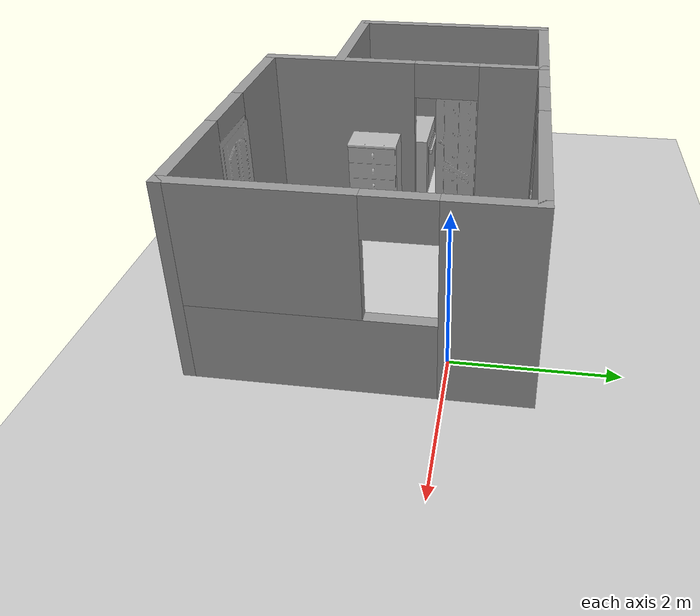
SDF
<sdf version="1.6">
 <world name="default">
  <light name="sun" type="directional">
   <pose>0 0 10 0 -0 0</pose>
   <diffuse>0.8 0.8 0.8 1</diffuse>
   <specular>0.2 0.2 0.2 1</specular>
   <attenuation>
    <range>1000</range>
    <constant>0.9</constant>
    <linear>0.01</linear>
    <quadratic>0.001</quadratic>
   </attenuation>
   <direction>-0.5 0.1 -0.9</direction>
  </light>
  <model name="ground_plane">
   <static>1</static>
   <link name="link">
    <collision name="collision">
     <geometry><plane><normal>0 0 1</normal><size>100 100</size></plane></geometry>
     <surface><friction><ode><mu>100</mu><mu2>50</mu2></ode></friction></surface>
    </collision>
    <visual name="visual">
     <cast_shadows>0</cast_shadows>
     <geometry><plane><normal>0 0 1</normal><size>100 100</size></plane></geometry>
     <material>
      <script><uri>file://media/materials/scripts/gazebo.material</uri><name>Gazebo/Grey</name></script>
     </material>
    </visual>
   </link>
  </model>
  <gravity>0 0 -9.8</gravity>
  <magnetic_field>6e-06 2.3e-05 -4.2e-05</magnetic_field>
  <atmosphere type="adiabatic"/>
  <physics name="default_physics" default="0" type="ode">
   <max_step_size>0.001</max_step_size>
   <real_time_factor>1</real_time_factor>
   <real_time_update_rate>1000</real_time_update_rate>
  </physics>
  <scene><ambient>0.4 0.4 0.4 1</ambient><background>0.7 0.7 0.7 1</background><shadows>1</shadows></scene>
  <audio><device>default</device></audio>
  <spherical_coordinates>
   <surface_model>EARTH_WGS84</surface_model>
   <latitude_deg>0</latitude_deg>
   <longitude_deg>0</longitude_deg>
   <elevation>0</elevation>
   <heading_deg>0</heading_deg>
  </spherical_coordinates>
  <model name="Small_Hospital_Room_0">
   <pose>-2.29599 -0.979467 0 0 -0 0</pose>
   <link name="Wall_11">
    <pose>0.925 1.925 0 0 -0 0</pose>
    <visual name="Wall_11_Visual_0">
     <pose>-1.59335 0 1.25 0 -0 0</pose>
     <geometry><box><size>0.813306 0.15 2.5</size></box></geometry>
     <material>
      <script><uri>file://media/materials/scripts/gazebo.material</uri><name>Gazebo/Grey</name></script>
      <ambient>1 1 1 1</ambient>
     </material>
     <meta><layer>0</layer></meta>
    </visual>
    <collision name="Wall_11_Collision_0">
     <geometry><box><size>0.813306 0.15 2.5</size></box></geometry>
     <pose>-1.59335 0 1.25 0 -0 0</pose>
    </collision>
    <visual name="Wall_11_Visual_1">
     <pose>0.406653 0 0.5 0 -0 0</pose>
     <geometry><box><size>3.18669 0.15 1</size></box></geometry>
     <material>
      <script><uri>file://media/materials/scripts/gazebo.material</uri><name>Gazebo/Grey</name></script>
      <ambient>1 1 1 1</ambient>
     </material>
     <meta><layer>0</layer></meta>
    </visual>
    <collision name="Wall_11_Collision_1">
     <geometry><box><size>3.18669 0.15 1</size></box></geometry>
     <pose>0.406653 0 0.5 0 -0 0</pose>
    </collision>
    <visual name="Wall_11_Visual_2">
     <pose>0.806653 0 1.75 0 -0 0</pose>
     <geometry><box><size>2.38669 0.15 1.5</size></box></geometry>
     <material>
      <script><uri>file://media/materials/scripts/gazebo.material</uri><name>Gazebo/Grey</name></script>
      <ambient>1 1 1 1</ambient>
     </material>
     <meta><layer>0</layer></meta>
    </visual>
    <collision name="Wall_11_Collision_2">
     <geometry><box><size>2.38669 0.15 1.5</size></box></geometry>
     <pose>0.806653 0 1.75 0 -0 0</pose>
    </collision>
    <visual name="Wall_11_Visual_3">
     <pose>-0.786694 0 2.25 0 -0 0</pose>
     <geometry><box><size>0.8 0.15 0.5</size></box></geometry>
     <material>
      <script><uri>file://media/materials/scripts/gazebo.material</uri><name>Gazebo/Grey</name></script>
      <ambient>1 1 1 1</ambient>
     </material>
     <meta><layer>0</layer></meta>
    </visual>
    <collision name="Wall_11_Collision_3">
     <geometry><box><size>0.8 0.15 0.5</size></box></geometry>
     <pose>-0.786694 0 2.25 0 -0 0</pose>
    </collision>
   </link>
   <link name="Wall_12">
    <pose>2.85 -0 0 0 -0 -1.5708</pose>
    <visual name="Wall_12_Visual_0">
     <pose>-1.46302 0 1.25 0 -0 0</pose>
     <geometry><box><size>1.07396 0.15 2.5</size></box></geometry>
     <material>
      <script><uri>file://media/materials/scripts/gazebo.material</uri><name>Gazebo/Grey</name></script>
      <ambient>1 1 1 1</ambient>
     </material>
     <meta><layer>0</layer></meta>
    </visual>
    <collision name="Wall_12_Collision_0">
     <geometry><box><size>1.07396 0.15 2.5</size></box></geometry>
     <pose>-1.46302 0 1.25 0 -0 0</pose>
    </collision>
    <visual name="Wall_12_Visual_1">
     <pose>0.536982 0 0.5 0 -0 0</pose>
     <geometry><box><size>2.92604 0.15 1</size></box></geometry>
     <material>
      <script><uri>file://media/materials/scripts/gazebo.material</uri><name>Gazebo/Grey</name></script>
      <ambient>1 1 1 1</ambient>
     </material>
     <meta><layer>0</layer></meta>
    </visual>
    <collision name="Wall_12_Collision_1">
     <geometry><box><size>2.92604 0.15 1</size></box></geometry>
     <pose>0.536982 0 0.5 0 -0 0</pose>
    </collision>
    <visual name="Wall_12_Visual_2">
     <pose>0.936982 0 1.75 0 -0 0</pose>
     <geometry><box><size>2.12604 0.15 1.5</size></box></geometry>
     <material>
      <script><uri>file://media/materials/scripts/gazebo.material</uri><name>Gazebo/Grey</name></script>
      <ambient>1 1 1 1</ambient>
     </material>
     <meta><layer>0</layer></meta>
    </visual>
    <collision name="Wall_12_Collision_2">
     <geometry><box><size>2.12604 0.15 1.5</size></box></geometry>
     <pose>0.936982 0 1.75 0 -0 0</pose>
    </collision>
    <visual name="Wall_12_Visual_3">
     <pose>-0.526037 0 2.25 0 -0 0</pose>
     <geometry><box><size>0.8 0.15 0.5</size></box></geometry>
     <material>
      <script><uri>file://media/materials/scripts/gazebo.material</uri><name>Gazebo/Grey</name></script>
      <ambient>1 1 1 1</ambient>
     </material>
     <meta><layer>0</layer></meta>
    </visual>
    <collision name="Wall_12_Collision_3">
     <geometry><box><size>0.8 0.15 0.5</size></box></geometry>
     <pose>-0.526037 0 2.25 0 -0 0</pose>
    </collision>
   </link>
   <link name="Wall_13">
    <pose>0.925 -1.925 0 0 -0 3.14159</pose>
    <visual name="Wall_13_Visual_0">
     <pose>-1.21845 0 1.25 0 -0 0</pose>
     <geometry><box><size>1.56311 0.15 2.5</size></box></geometry>
     <material>
      <script><uri>file://media/materials/scripts/gazebo.material</uri><name>Gazebo/Grey</name></script>
      <ambient>1 1 1 1</ambient>
     </material>
     <meta><layer>0</layer></meta>
    </visual>
    <collision name="Wall_13_Collision_0">
     <geometry><box><size>1.56311 0.15 2.5</size></box></geometry>
     <pose>-1.21845 0 1.25 0 -0 0</pose>
    </collision>
    <visual name="Wall_13_Visual_1">
     <pose>1.23155 0 1.25 0 -0 0</pose>
     <geometry><box><size>1.53689 0.15 2.5</size></box></geometry>
     <material>
      <script><uri>file://media/materials/scripts/gazebo.material</uri><name>Gazebo/Grey</name></script>
      <ambient>1 1 1 1</ambient>
     </material>
     <meta><layer>0</layer></meta>
    </visual>
    <collision name="Wall_13_Collision_1">
     <geometry><box><size>1.53689 0.15 2.5</size></box></geometry>
     <pose>1.23155 0 1.25 0 -0 0</pose>
    </collision>
    <visual name="Wall_13_Visual_2">
     <pose>0.013111 0 2.25 0 -0 0</pose>
     <geometry><box><size>0.9 0.15 0.5</size></box></geometry>
     <material>
      <script><uri>file://media/materials/scripts/gazebo.material</uri><name>Gazebo/Grey</name></script>
      <ambient>1 1 1 1</ambient>
     </material>
     <meta><layer>0</layer></meta>
    </visual>
    <collision name="Wall_13_Collision_2">
     <geometry><box><size>0.9 0.15 0.5</size></box></geometry>
     <pose>0.013111 0 2.25 0 -0 0</pose>
    </collision>
   </link>
   <link name="Wall_14">
    <pose>-1 -0 0 0 -0 1.5708</pose>
    <visual name="Wall_14_Visual_0">
     <pose>-0.927837 0 1.25 0 -0 0</pose>
     <geometry><box><size>2.14432 0.15 2.5</size></box></geometry>
     <material>
      <script><uri>file://media/materials/scripts/gazebo.material</uri><name>Gazebo/Grey</name></script>
      <ambient>1 1 1 1</ambient>
     </material>
     <meta><layer>0</layer></meta>
    </visual>
    <collision name="Wall_14_Collision_0">
     <geometry><box><size>2.14432 0.15 2.5</size></box></geometry>
     <pose>-0.927837 0 1.25 0 -0 0</pose>
    </collision>
    <visual name="Wall_14_Visual_1">
     <pose>1.52216 0 1.25 0 -0 0</pose>
     <geometry><box><size>0.955675 0.15 2.5</size></box></geometry>
     <material>
      <script><uri>file://media/materials/scripts/gazebo.material</uri><name>Gazebo/Grey</name></script>
      <ambient>1 1 1 1</ambient>
     </material>
     <meta><layer>0</layer></meta>
    </visual>
    <collision name="Wall_14_Collision_1">
     <geometry><box><size>0.955675 0.15 2.5</size></box></geometry>
     <pose>1.52216 0 1.25 0 -0 0</pose>
    </collision>
    <visual name="Wall_14_Visual_2">
     <pose>0.594325 0 2.25 0 -0 0</pose>
     <geometry><box><size>0.9 0.15 0.5</size></box></geometry>
     <material>
      <script><uri>file://media/materials/scripts/gazebo.material</uri><name>Gazebo/Grey</name></script>
      <ambient>1 1 1 1</ambient>
     </material>
     <meta><layer>0</layer></meta>
    </visual>
    <collision name="Wall_14_Collision_2">
     <geometry><box><size>0.9 0.15 0.5</size></box></geometry>
     <pose>0.594325 0 2.25 0 -0 0</pose>
    </collision>
   </link>
   <link name="Wall_15">
    <collision name="Wall_15_Collision">
     <geometry><box><size>2 0.15 2.5</size></box></geometry>
     <pose>0 0 1.25 0 -0 0</pose>
    </collision>
    <visual name="Wall_15_Visual">
     <pose>0 0 1.25 0 -0 0</pose>
     <geometry><box><size>2 0.15 2.5</size></box></geometry>
     <material>
      <script><uri>file://media/materials/scripts/gazebo.material</uri><name>Gazebo/Grey</name></script>
      <ambient>1 1 1 1</ambient>
     </material>
     <meta><layer>0</layer></meta>
    </visual>
    <pose>-1.925 1.925 0 0 -0 3.14159</pose>
   </link>
   <link name="Wall_16">
    <collision name="Wall_16_Collision">
     <geometry><box><size>3 0.15 2.5</size></box></geometry>
     <pose>0 0 1.25 0 -0 0</pose>
    </collision>
    <visual name="Wall_16_Visual">
     <pose>0 0 1.25 0 -0 0</pose>
     <geometry><box><size>3 0.15 2.5</size></box></geometry>
     <material>
      <script><uri>file://media/materials/scripts/gazebo.material</uri><name>Gazebo/Grey</name></script>
      <ambient>1 1 1 1</ambient>
     </material>
     <meta><layer>0</layer></meta>
    </visual>
    <pose>-2.85 0.5 0 0 -0 -1.5708</pose>
   </link>
   <link name="Wall_17">
    <collision name="Wall_17_Collision">
     <geometry><box><size>2 0.15 2.5</size></box></geometry>
     <pose>0 0 1.25 0 -0 0</pose>
    </collision>
    <visual name="Wall_17_Visual">
     <pose>0 0 1.25 0 -0 0</pose>
     <geometry><box><size>2 0.15 2.5</size></box></geometry>
     <material>
      <script><uri>file://media/materials/scripts/gazebo.material</uri><name>Gazebo/Grey</name></script>
      <ambient>1 1 1 1</ambient>
     </material>
     <meta><layer>0</layer></meta>
    </visual>
    <pose>-1.925 -0.925 0 0 -0 0</pose>
   </link>
   <static>1</static>
  </model>
  <model name="chair">
   <static>1</static>
   <link name="link">
    <collision name="collision">
     <pose>0 0 0.3 0 -0 0</pose>
     <geometry><mesh><uri>model://chair/meshes/chair.stl</uri></mesh></geometry>
     <surface>
      <friction><ode><mu>1</mu><mu2>1</mu2></ode></friction>
      <contact><ode><kp>1e+07</kp><kd>1</kd><min_depth>0.001</min_depth><max_vel>0.1</max_vel></ode></contact>
     </surface>
    </collision>
    <visual name="visual">
     <pose>0 0 0.3 0 -0 0</pose>
     <geometry><mesh><uri>model://chair/meshes/chair.stl</uri></mesh></geometry>
    </visual>
   </link>
   <pose>-0.71683 0.729501 -0.463045 0 -0 -1.33923</pose>
  </model>
  <model name="door">
   <static>1</static>
   <link name="link">
    <collision name="collision">
     <geometry><mesh><uri>model://door/meshes/d.stl</uri></mesh></geometry>
     <surface>
      <friction><ode><mu>1</mu><mu2>1</mu2></ode></friction>
      <contact><ode><kp>1e+07</kp><kd>1</kd><min_depth>0.001</min_depth><max_vel>0.1</max_vel></ode></contact>
     </surface>
    </collision>
    <visual name="visual"><geometry><mesh><uri>model://door/meshes/d.stl</uri></mesh></geometry></visual>
   </link>
   <pose>-3.62427 -0.249924 0 0 0 -0.822119</pose>
  </model>
  <model name="door_0">
   <static>1</static>
   <link name="link">
    <collision name="collision">
     <geometry><mesh><uri>model://door/meshes/d.stl</uri></mesh></geometry>
     <surface>
      <friction><ode><mu>1</mu><mu2>1</mu2></ode></friction>
      <contact><ode><kp>1e+07</kp><kd>1</kd><min_depth>0.001</min_depth><max_vel>0.1</max_vel></ode></contact>
     </surface>
    </collision>
    <visual name="visual"><geometry><mesh><uri>model://door/meshes/d.stl</uri></mesh></geometry></visual>
   </link>
   <pose>-1.41821 -2.83835 0 0 -0 1.57536</pose>
  </model>
  <model name="faucet">
   <static>1</static>
   <link name="link">
    <collision name="collision">
     <geometry><mesh><uri>model://faucet/meshes/f.stl</uri></mesh></geometry>
     <surface>
      <friction><ode><mu>1</mu><mu2>1</mu2></ode></friction>
      <contact><ode><kp>1e+07</kp><kd>1</kd><min_depth>0.001</min_depth><max_vel>0.1</max_vel></ode></contact>
     </surface>
    </collision>
    <visual name="visual"><geometry><mesh><uri>model://faucet/meshes/f.stl</uri></mesh></geometry></visual>
   </link>
   <pose>-4.53859 -1.62574 0 0 -0 -0.006165</pose>
  </model>
  <model name="cupboard">
   <static>1</static>
   <link name="link">
    <collision name="collision">
     <geometry><mesh><uri>model://cupboard/meshes/cb.stl</uri></mesh></geometry>
     <surface>
      <friction><ode><mu>1</mu><mu2>1</mu2></ode></friction>
      <contact><ode><kp>1e+07</kp><kd>1</kd><min_depth>0.001</min_depth><max_vel>0.1</max_vel></ode></contact>
     </surface>
    </collision>
    <visual name="visual"><geometry><mesh><uri>model://cupboard/meshes/cb.stl</uri></mesh></geometry></visual>
   </link>
   <pose>-3.06347 -1.38634 0 0 -0 1.5716</pose>
  </model>
 </world>
</sdf>
